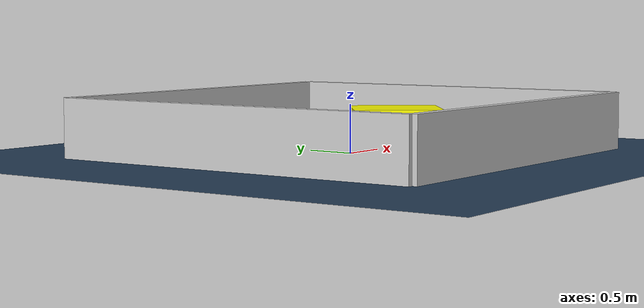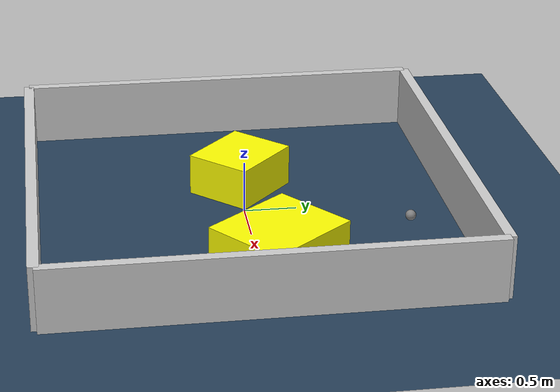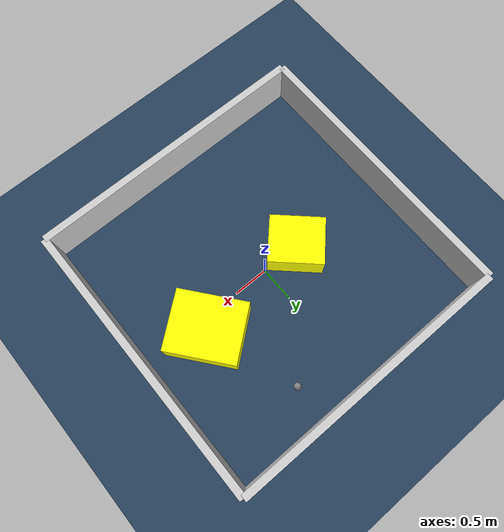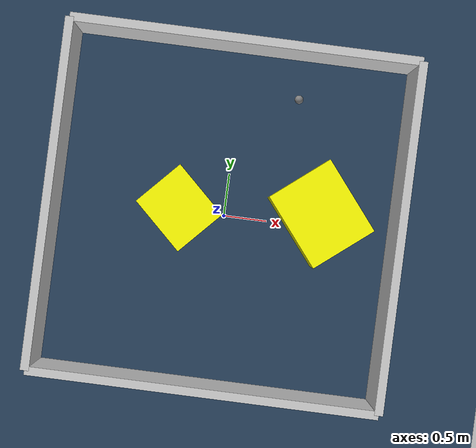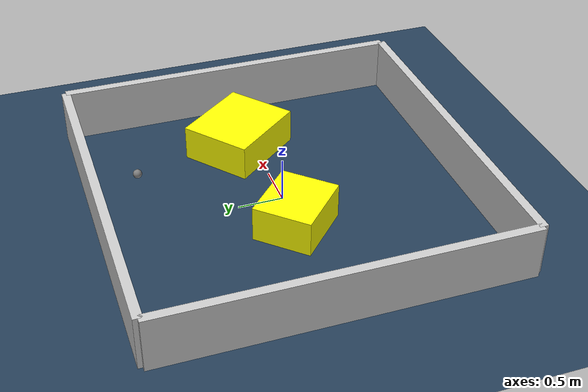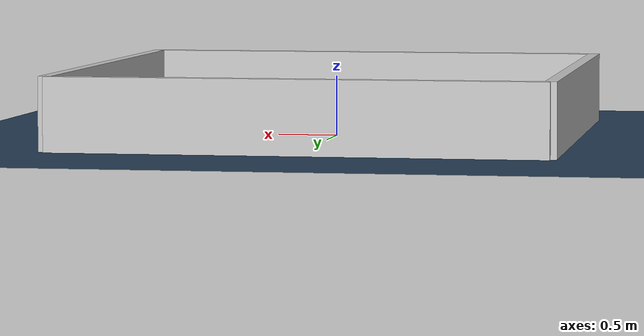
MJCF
<?xml version="1.0" ?>
<mujoco model="generated_environment">
  <option timestep="0.01" integrator="RK4" cone="elliptic"/>
  <default>
    <geom density="1"/>
  </default>
  <asset>
    <texture builtin="gradient" height="3072" rgb1="0.3 0.5 0.7" rgb2="0 0 0" type="skybox" width="512"/>
    <texture builtin="checker" height="300" mark="edge" markrgb="0.8 0.8 0.8" name="groundplane" rgb1="0.2 0.3 0.4" rgb2="0.1 0.2 0.3" type="2d" width="300"/>
    <material name="groundplane" reflectance="0.2" texrepeat="5 5" texture="groundplane" texuniform="true"/>
    <material name="robot" rgba="0.0 1.0 0.0 1"/>
  </asset>
  <worldbody>
    <light dir="0 0 -1" directional="true" pos="0 0 1.5"/>
    <geom condim="4" friction="1.0 0.005 0.001" material="groundplane" name="floor" size="0 0 0.05" type="plane"/>
    <body name="walls">
      <geom name="wall_1" condim="4" pos="-2.0 0.0 0.3" rgba="0.800000011920929 0.800000011920929 0.800000011920929 1.0" size="0.05 2.0 0.3" type="box"/>
      <geom name="wall_2" condim="4" pos="2.0 0.0 0.3" rgba="0.800000011920929 0.800000011920929 0.800000011920929 1.0" size="0.05 2.0 0.3" type="box"/>
      <geom name="wall_3" condim="4" pos="0.0 -2.0 0.3" rgba="0.800000011920929 0.800000011920929 0.800000011920929 1.0" size="2.0 0.05 0.3" type="box"/>
      <geom name="wall_4" condim="4" pos="0.0 2.0 0.3" rgba="0.800000011920929 0.800000011920929 0.800000011920929 1.0" size="2.0 0.05 0.3" type="box"/>
    </body>
    <body name="robot">
      <joint name="joint_x" type="slide" pos="0 0 0" axis="1 0 0"/>
      <joint name="joint_y" type="slide" pos="0 0 0" axis="0 1 0"/>
      <geom name="robot" type="sphere" pos="0.6951125408145518 1.4586624624543676 0.2" size="0.05" mass="5." friction="1.0 0.005 0.0001" condim="4"/>
      <site name="sensor_ball"/>
    </body>
    <body name="obstacle_1_movable">
      <geom name="obstacle_1_movable" condim="4" pos="1.1068011601684509 0.16500703546072248 0.2" euler="0 0 308.72750131776627" friction="1.0 0.005 0.001" rgba="1 1 0 1" size="0.48186415465476756 0.4110236924124827 0.2" type="box" mass="0.1"/>
      <joint type="free"/>
    </body>
    <body name="obstacle_2_movable">
      <geom name="obstacle_2_movable" condim="4" pos="-0.5237355986079113 0.026792046900706135 0.2" euler="0 0 226.80982141555057" friction="1.0 0.005 0.001" rgba="1 1 0 1" size="0.32902756122305193 0.3758426281954512 0.2" type="box" mass="0.1"/>
      <joint type="free"/>
    </body>
  </worldbody>
  <actuator>
    <motor name="actuator_x" joint="joint_x" gear="1" ctrlrange="-1 1"/>
    <motor name="actuator_y" joint="joint_y" gear="1" ctrlrange="-1 1"/>
  </actuator>
</mujoco>
